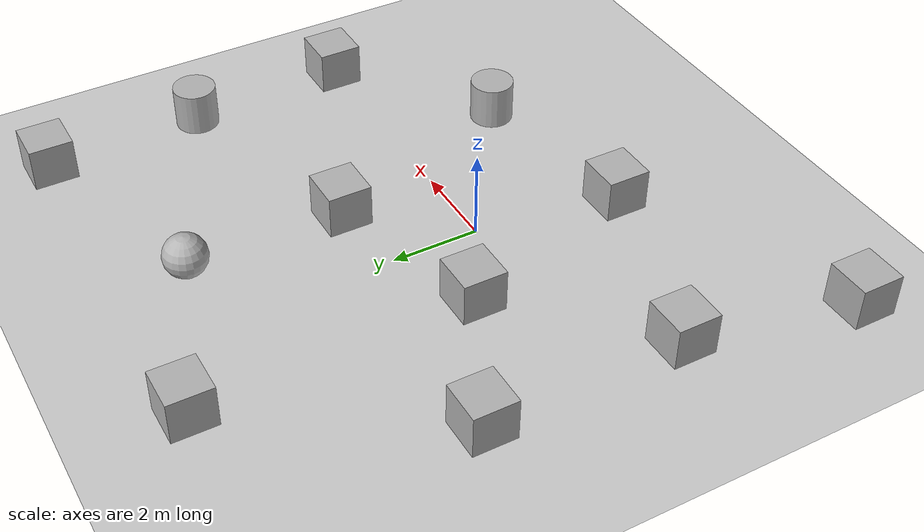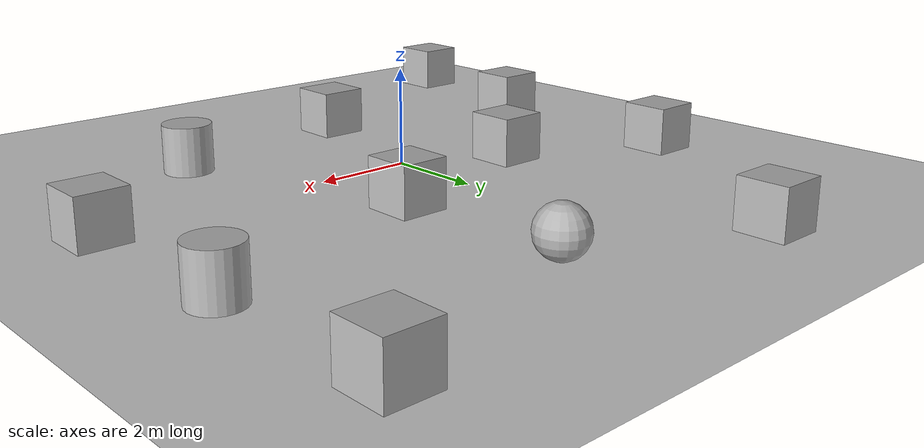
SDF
<?xml version="1.0"?>
<sdf version='1.9'>
  <world name='empty_world'>
    <model name='ground_plane'>
      <static>true</static>
      <link name='link'>
        <collision name='collision'>
          <geometry>
            <plane>
              <normal>0 0 1</normal>
              <size>1 1</size>
            </plane>
          </geometry>
          <surface>
            <friction>
              <ode/>
            </friction>
            <bounce/>
            <contact/>
          </surface>
        </collision>
        <visual name='visual'>
          <geometry>
            <plane>
              <normal>0 0 1</normal>
              <size>100 100</size>
            </plane>
          </geometry>
          <material>
            <ambient>0.8 0.8 0.8 1</ambient>
            <diffuse>0.8 0.8 0.8 1</diffuse>
            <specular>0.8 0.8 0.8 1</specular>
          </material>
        </visual>
        <pose>0 0 0 0 -0 0</pose>
        <inertial>
          <pose>0 0 0 0 -0 0</pose>
          <mass>1</mass>
          <inertia>
            <ixx>1</ixx>
            <ixy>0</ixy>
            <ixz>0</ixz>
            <iyy>1</iyy>
            <iyz>0</iyz>
            <izz>1</izz>
          </inertia>
        </inertial>
        <enable_wind>false</enable_wind>
      </link>
      <pose>0 0 0 0 -0 0</pose>
      <self_collide>false</self_collide>
    </model>
    <model name='box'>
      <pose>1.83264 2.33237 0.5 0 0 -0</pose>
      <link name='box_link'>
        <inertial>
          <inertia>
            <ixx>0.16666</ixx>
            <ixy>0</ixy>
            <ixz>0</ixz>
            <iyy>0.16666</iyy>
            <iyz>0</iyz>
            <izz>0.16666</izz>
          </inertia>
          <mass>1</mass>
          <pose>0 0 0 0 -0 0</pose>
        </inertial>
        <collision name='box_collision'>
          <geometry>
            <box>
              <size>1 1 1</size>
            </box>
          </geometry>
          <surface>
            <friction>
              <ode/>
            </friction>
            <bounce/>
            <contact/>
          </surface>
        </collision>
        <visual name='box_visual'>
          <geometry>
            <box>
              <size>1 1 1</size>
            </box>
          </geometry>
          <material>
            <ambient>0.3 0.3 0.3 1</ambient>
            <diffuse>0.7 0.7 0.7 1</diffuse>
            <specular>1 1 1 1</specular>
          </material>
        </visual>
        <pose>0 0 0 0 -0 0</pose>
        <enable_wind>false</enable_wind>
      </link>
      <static>false</static>
      <self_collide>false</self_collide>
    </model>
    <model name='box_0'>
      <pose>6.85107 0.116758 0.5 0 0 -0</pose>
      <link name='box_link'>
        <inertial>
          <inertia>
            <ixx>0.16666</ixx>
            <ixy>0</ixy>
            <ixz>0</ixz>
            <iyy>0.16666</iyy>
            <iyz>0</iyz>
            <izz>0.16666</izz>
          </inertia>
          <mass>1</mass>
          <pose>0 0 0 0 -0 0</pose>
        </inertial>
        <collision name='box_collision'>
          <geometry>
            <box>
              <size>1 1 1</size>
            </box>
          </geometry>
          <surface>
            <friction>
              <ode/>
            </friction>
            <bounce/>
            <contact/>
          </surface>
        </collision>
        <visual name='box_visual'>
          <geometry>
            <box>
              <size>1 1 1</size>
            </box>
          </geometry>
          <material>
            <ambient>0.3 0.3 0.3 1</ambient>
            <diffuse>0.7 0.7 0.7 1</diffuse>
            <specular>1 1 1 1</specular>
          </material>
        </visual>
        <pose>0 0 0 0 -0 0</pose>
        <enable_wind>false</enable_wind>
      </link>
      <static>false</static>
      <self_collide>false</self_collide>
    </model>
    <model name='cylinder'>
      <pose>3.54238 -2.48524 0.499999 0 0 0</pose>
      <link name='cylinder_link'>
        <inertial>
          <inertia>
            <ixx>0.14580000000000001</ixx>
            <ixy>0</ixy>
            <ixz>0</ixz>
            <iyy>0.14580000000000001</iyy>
            <iyz>0</iyz>
            <izz>0.125</izz>
          </inertia>
          <mass>1</mass>
          <pose>0 0 0 0 -0 0</pose>
        </inertial>
        <collision name='cylinder_collision'>
          <geometry>
            <cylinder>
              <radius>0.5</radius>
              <length>1</length>
            </cylinder>
          </geometry>
          <surface>
            <friction>
              <ode/>
            </friction>
            <bounce/>
            <contact/>
          </surface>
        </collision>
        <visual name='cylinder_visual'>
          <geometry>
            <cylinder>
              <radius>0.5</radius>
              <length>1</length>
            </cylinder>
          </geometry>
          <material>
            <ambient>0.3 0.3 0.3 1</ambient>
            <diffuse>0.7 0.7 0.7 1</diffuse>
            <specular>1 1 1 1</specular>
          </material>
        </visual>
        <pose>0 0 0 0 -0 0</pose>
        <enable_wind>false</enable_wind>
      </link>
      <static>false</static>
      <self_collide>false</self_collide>
    </model>
    <model name='box_1'>
      <pose>-1.9055 1.16814 0.5 0 0 -0</pose>
      <link name='box_link'>
        <inertial>
          <inertia>
            <ixx>0.16666</ixx>
            <ixy>0</ixy>
            <ixz>0</ixz>
            <iyy>0.16666</iyy>
            <iyz>0</iyz>
            <izz>0.16666</izz>
          </inertia>
          <mass>1</mass>
          <pose>0 0 0 0 -0 0</pose>
        </inertial>
        <collision name='box_collision'>
          <geometry>
            <box>
              <size>1 1 1</size>
            </box>
          </geometry>
          <surface>
            <friction>
              <ode/>
            </friction>
            <bounce/>
            <contact/>
          </surface>
        </collision>
        <visual name='box_visual'>
          <geometry>
            <box>
              <size>1 1 1</size>
            </box>
          </geometry>
          <material>
            <ambient>0.3 0.3 0.3 1</ambient>
            <diffuse>0.7 0.7 0.7 1</diffuse>
            <specular>1 1 1 1</specular>
          </material>
        </visual>
        <pose>0 0 0 0 -0 0</pose>
        <enable_wind>false</enable_wind>
      </link>
      <static>false</static>
      <self_collide>false</self_collide>
    </model>
    <model name='box_2'>
      <pose>-0.59546 -3.2054 0.5 0 0 -0</pose>
      <link name='box_link'>
        <inertial>
          <inertia>
            <ixx>0.16666</ixx>
            <ixy>0</ixy>
            <ixz>0</ixz>
            <iyy>0.16666</iyy>
            <iyz>0</iyz>
            <izz>0.16666</izz>
          </inertia>
          <mass>1</mass>
          <pose>0 0 0 0 -0 0</pose>
        </inertial>
        <collision name='box_collision'>
          <geometry>
            <box>
              <size>1 1 1</size>
            </box>
          </geometry>
          <surface>
            <friction>
              <ode/>
            </friction>
            <bounce/>
            <contact/>
          </surface>
        </collision>
        <visual name='box_visual'>
          <geometry>
            <box>
              <size>1 1 1</size>
            </box>
          </geometry>
          <material>
            <ambient>0.3 0.3 0.3 1</ambient>
            <diffuse>0.7 0.7 0.7 1</diffuse>
            <specular>1 1 1 1</specular>
          </material>
        </visual>
        <pose>0 0 0 0 -0 0</pose>
        <enable_wind>false</enable_wind>
      </link>
      <static>false</static>
      <self_collide>false</self_collide>
    </model>
    <model name='box_3'>
      <pose>-4.96532 -1.81738 0.5 0 0 -0</pose>
      <link name='box_link'>
        <inertial>
          <inertia>
            <ixx>0.16666</ixx>
            <ixy>0</ixy>
            <ixz>0</ixz>
            <iyy>0.16666</iyy>
            <iyz>0</iyz>
            <izz>0.16666</izz>
          </inertia>
          <mass>1</mass>
          <pose>0 0 0 0 -0 0</pose>
        </inertial>
        <collision name='box_collision'>
          <geometry>
            <box>
              <size>1 1 1</size>
            </box>
          </geometry>
          <surface>
            <friction>
              <ode/>
            </friction>
            <bounce/>
            <contact/>
          </surface>
        </collision>
        <visual name='box_visual'>
          <geometry>
            <box>
              <size>1 1 1</size>
            </box>
          </geometry>
          <material>
            <ambient>0.3 0.3 0.3 1</ambient>
            <diffuse>0.7 0.7 0.7 1</diffuse>
            <specular>1 1 1 1</specular>
          </material>
        </visual>
        <pose>0 0 0 0 -0 0</pose>
        <enable_wind>false</enable_wind>
      </link>
      <static>false</static>
      <self_collide>false</self_collide>
    </model>
    <model name='box_4'>
      <pose>-4.99714 2.75581 0.5 0 0 -0</pose>
      <link name='box_link'>
        <inertial>
          <inertia>
            <ixx>0.16666</ixx>
            <ixy>0</ixy>
            <ixz>0</ixz>
            <iyy>0.16666</iyy>
            <iyz>0</iyz>
            <izz>0.16666</izz>
          </inertia>
          <mass>1</mass>
          <pose>0 0 0 0 -0 0</pose>
        </inertial>
        <collision name='box_collision'>
          <geometry>
            <box>
              <size>1 1 1</size>
            </box>
          </geometry>
          <surface>
            <friction>
              <ode/>
            </friction>
            <bounce/>
            <contact/>
          </surface>
        </collision>
        <visual name='box_visual'>
          <geometry>
            <box>
              <size>1 1 1</size>
            </box>
          </geometry>
          <material>
            <ambient>0.3 0.3 0.3 1</ambient>
            <diffuse>0.7 0.7 0.7 1</diffuse>
            <specular>1 1 1 1</specular>
          </material>
        </visual>
        <pose>0 0 0 0 -0 0</pose>
        <enable_wind>false</enable_wind>
      </link>
      <static>false</static>
      <self_collide>false</self_collide>
    </model>
    <model name='cylinder_0'>
      <pose>6.69563 3.76909 0.499999 0 -0 0</pose>
      <link name='cylinder_link'>
        <inertial>
          <inertia>
            <ixx>0.14580000000000001</ixx>
            <ixy>0</ixy>
            <ixz>0</ixz>
            <iyy>0.14580000000000001</iyy>
            <iyz>0</iyz>
            <izz>0.125</izz>
          </inertia>
          <mass>1</mass>
          <pose>0 0 0 0 -0 0</pose>
        </inertial>
        <collision name='cylinder_collision'>
          <geometry>
            <cylinder>
              <radius>0.5</radius>
              <length>1</length>
            </cylinder>
          </geometry>
          <surface>
            <friction>
              <ode/>
            </friction>
            <bounce/>
            <contact/>
          </surface>
        </collision>
        <visual name='cylinder_visual'>
          <geometry>
            <cylinder>
              <radius>0.5</radius>
              <length>1</length>
            </cylinder>
          </geometry>
          <material>
            <ambient>0.3 0.3 0.3 1</ambient>
            <diffuse>0.7 0.7 0.7 1</diffuse>
            <specular>1 1 1 1</specular>
          </material>
        </visual>
        <pose>0 0 0 0 -0 0</pose>
        <enable_wind>false</enable_wind>
      </link>
      <static>false</static>
      <self_collide>false</self_collide>
    </model>
    <model name='sphere'>
      <pose>1.73464 5.96992 0.5 0 -0 0</pose>
      <link name='sphere_link'>
        <inertial>
          <inertia>
            <ixx>0.10000000000000001</ixx>
            <ixy>0</ixy>
            <ixz>0</ixz>
            <iyy>0.10000000000000001</iyy>
            <iyz>0</iyz>
            <izz>0.10000000000000001</izz>
          </inertia>
          <mass>1</mass>
          <pose>0 0 0 0 -0 0</pose>
        </inertial>
        <collision name='sphere_collision'>
          <geometry>
            <sphere>
              <radius>0.5</radius>
            </sphere>
          </geometry>
          <surface>
            <friction>
              <ode/>
            </friction>
            <bounce/>
            <contact/>
          </surface>
        </collision>
        <visual name='sphere_visual'>
          <geometry>
            <sphere>
              <radius>0.5</radius>
            </sphere>
          </geometry>
          <material>
            <ambient>0.3 0.3 0.3 1</ambient>
            <diffuse>0.7 0.7 0.7 1</diffuse>
            <specular>1 1 1 1</specular>
          </material>
        </visual>
        <pose>0 0 0 0 -0 0</pose>
        <enable_wind>false</enable_wind>
      </link>
      <static>false</static>
      <self_collide>false</self_collide>
    </model>
    <model name='box_5'>
      <pose>-5.81817 -5.66246 0.5 0 0 -0</pose>
      <link name='box_link'>
        <inertial>
          <inertia>
            <ixx>0.16666</ixx>
            <ixy>0</ixy>
            <ixz>0</ixz>
            <iyy>0.16666</iyy>
            <iyz>0</iyz>
            <izz>0.16666</izz>
          </inertia>
          <mass>1</mass>
          <pose>0 0 0 0 -0 0</pose>
        </inertial>
        <collision name='box_collision'>
          <geometry>
            <box>
              <size>1 1 1</size>
            </box>
          </geometry>
          <surface>
            <friction>
              <ode/>
            </friction>
            <bounce/>
            <contact/>
          </surface>
        </collision>
        <visual name='box_visual'>
          <geometry>
            <box>
              <size>1 1 1</size>
            </box>
          </geometry>
          <material>
            <ambient>0.3 0.3 0.3 1</ambient>
            <diffuse>0.7 0.7 0.7 1</diffuse>
            <specular>1 1 1 1</specular>
          </material>
        </visual>
        <pose>0 0 0 0 -0 0</pose>
        <enable_wind>false</enable_wind>
      </link>
      <static>false</static>
      <self_collide>false</self_collide>
    </model>
    <model name='box_6'>
      <pose>-2.0269 7.4764 0.5 0 0 -0</pose>
      <link name='box_link'>
        <inertial>
          <inertia>
            <ixx>0.16666</ixx>
            <ixy>0</ixy>
            <ixz>0</ixz>
            <iyy>0.16666</iyy>
            <iyz>0</iyz>
            <izz>0.16666</izz>
          </inertia>
          <mass>1</mass>
          <pose>0 0 0 0 -0 0</pose>
        </inertial>
        <collision name='box_collision'>
          <geometry>
            <box>
              <size>1 1 1</size>
            </box>
          </geometry>
          <surface>
            <friction>
              <ode/>
            </friction>
            <bounce/>
            <contact/>
          </surface>
        </collision>
        <visual name='box_visual'>
          <geometry>
            <box>
              <size>1 1 1</size>
            </box>
          </geometry>
          <material>
            <ambient>0.3 0.3 0.3 1</ambient>
            <diffuse>0.7 0.7 0.7 1</diffuse>
            <specular>1 1 1 1</specular>
          </material>
        </visual>
        <pose>0 0 0 0 -0 0</pose>
        <enable_wind>false</enable_wind>
      </link>
      <static>false</static>
      <self_collide>false</self_collide>
    </model>
    <model name='box_7'>
      <pose>6.50129 7.42339 0.5 0 0 -0</pose>
      <link name='box_link'>
        <inertial>
          <inertia>
            <ixx>0.16666</ixx>
            <ixy>0</ixy>
            <ixz>0</ixz>
            <iyy>0.16666</iyy>
            <iyz>0</iyz>
            <izz>0.16666</izz>
          </inertia>
          <mass>1</mass>
          <pose>0 0 0 0 -0 0</pose>
        </inertial>
        <collision name='box_collision'>
          <geometry>
            <box>
              <size>1 1 1</size>
            </box>
          </geometry>
          <surface>
            <friction>
              <ode/>
            </friction>
            <bounce/>
            <contact/>
          </surface>
        </collision>
        <visual name='box_visual'>
          <geometry>
            <box>
              <size>1 1 1</size>
            </box>
          </geometry>
          <material>
            <ambient>0.3 0.3 0.3 1</ambient>
            <diffuse>0.7 0.7 0.7 1</diffuse>
            <specular>1 1 1 1</specular>
          </material>
        </visual>
        <pose>0 0 0 0 -0 0</pose>
        <enable_wind>false</enable_wind>
      </link>
      <static>false</static>
      <self_collide>false</self_collide>
    </model>
    <light name='sun' type='directional'>
      <pose>0 0 10 0 -0 0</pose>
      <cast_shadows>true</cast_shadows>
      <intensity>1</intensity>
      <direction>-0.5 0.1 -0.9</direction>
      <diffuse>0.8 0.8 0.8 1</diffuse>
      <specular>0.2 0.2 0.2 1</specular>
      <attenuation>
        <range>1000</range>
        <linear>0.01</linear>
        <constant>0.90000000000000002</constant>
        <quadratic>0.001</quadratic>
      </attenuation>
      <spot>
        <inner_angle>0</inner_angle>
        <outer_angle>0</outer_angle>
        <falloff>0</falloff>
      </spot>
    </light>
  </world>
</sdf>
